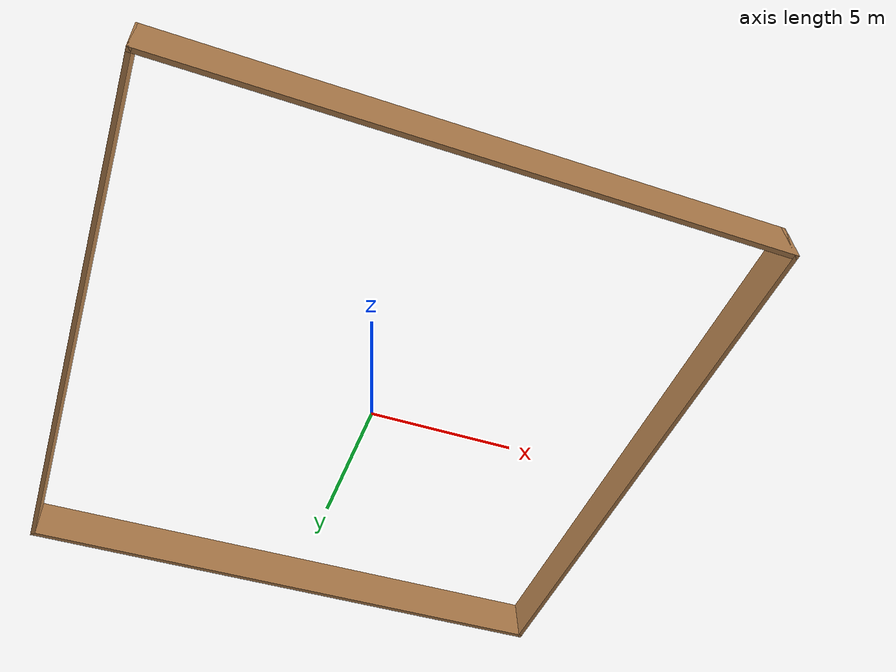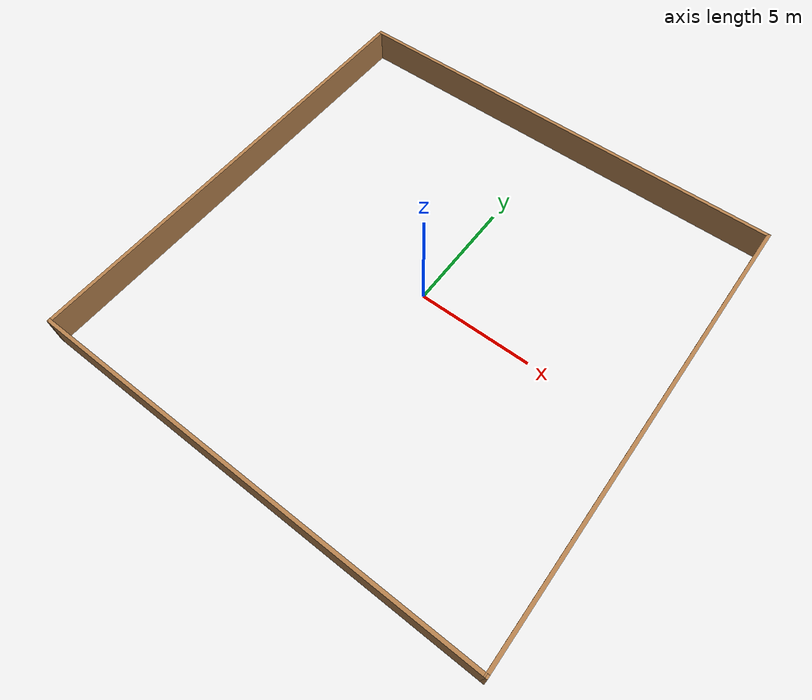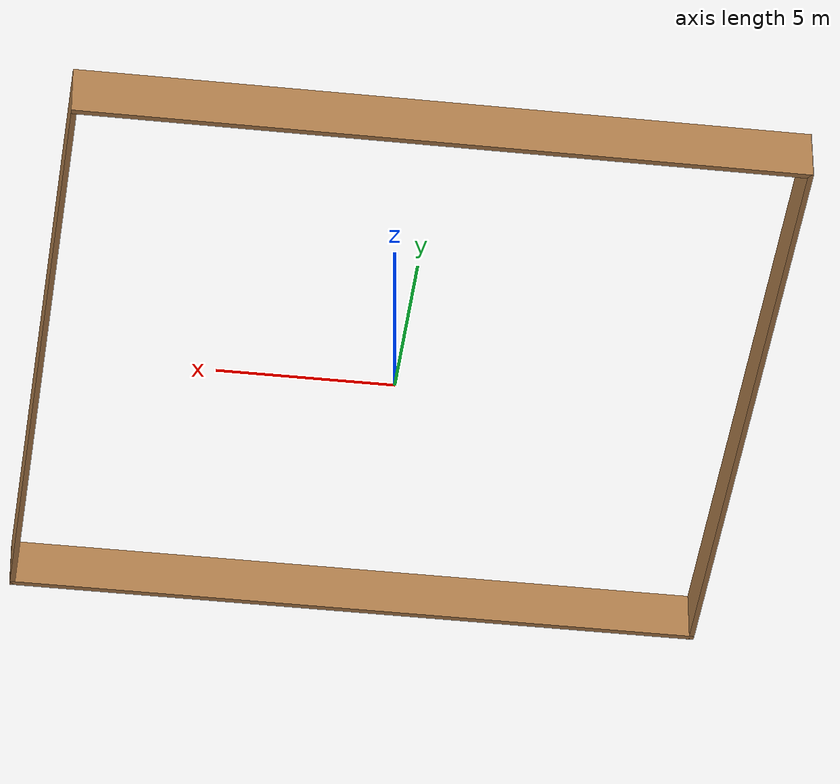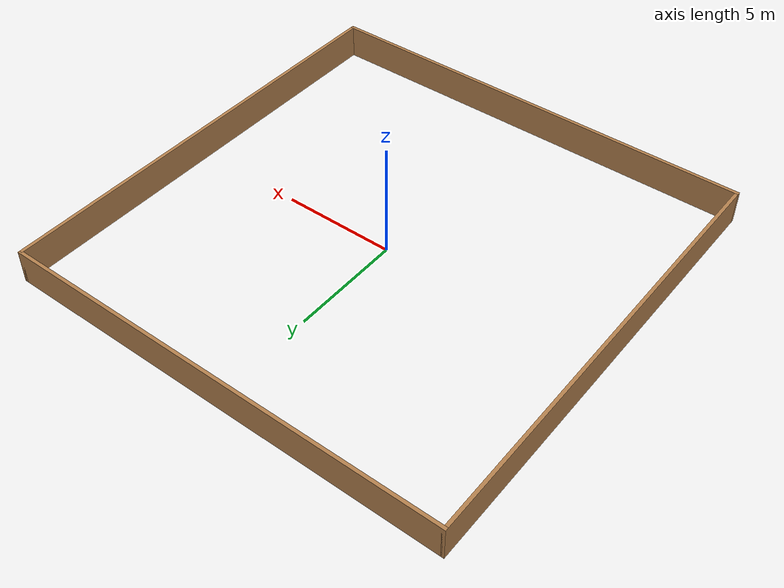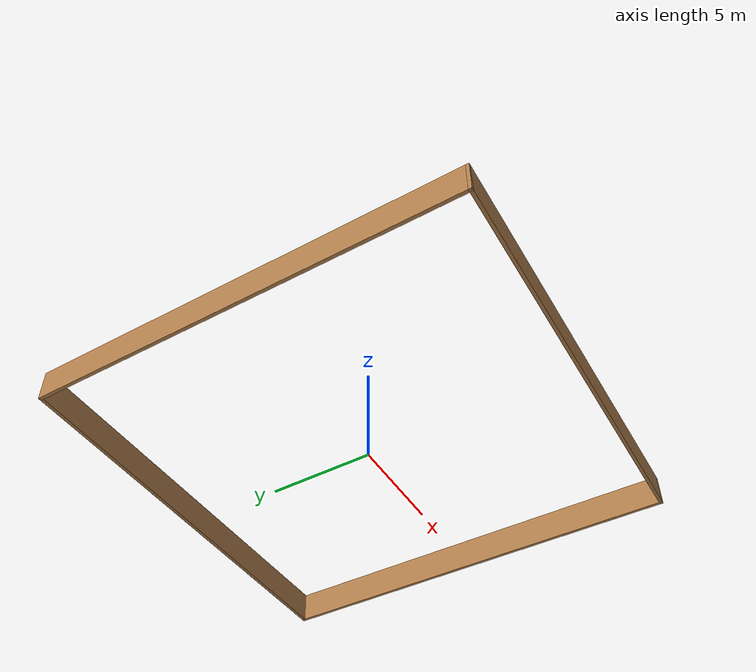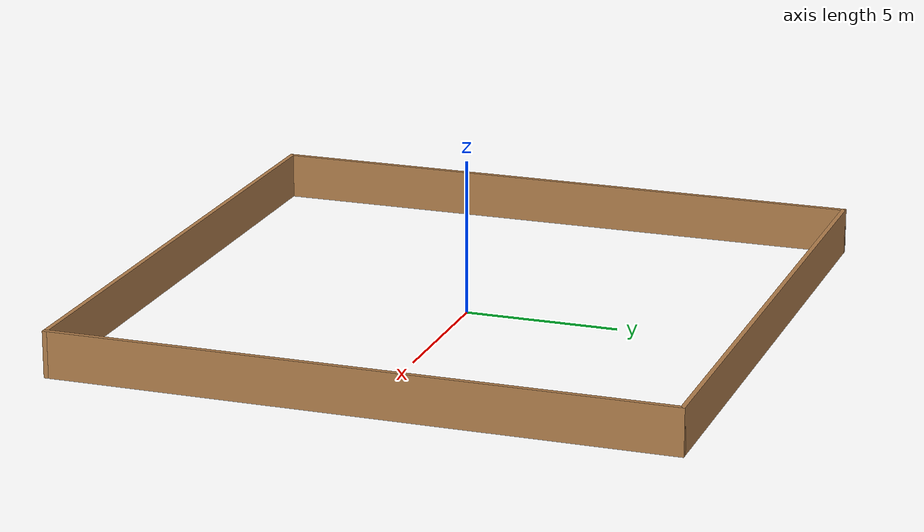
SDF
<?xml version='1.0'?>
<sdf version='1.7'>
  <model name='Bound_Wall'>
    <pose>-0.075 -0.0595 0 0 -0 0</pose>
    <link name='Wall_0'>
      <collision name='Wall_0_Collision'>
        <geometry>
          <box>
            <size>20 0.15 1.5</size>
          </box>
        </geometry>
        <pose>0 0 0.75 0 -0 0</pose>
      </collision>
      <visual name='Wall_0_Visual'>
        <pose>0 0 0.75 0 -0 0</pose>
        <geometry>
          <box>
            <size>20 0.15 1.5</size>
          </box>
        </geometry>
        <material>
          <script>
            <uri>file://media/materials/scripts/gazebo.material</uri>
            <name>Gazebo/Wood</name>
          </script>
          <ambient>1 1 1 1</ambient>
        </material>
        <meta>
          <layer>0</layer>
        </meta>
      </visual>
      <pose>-0 -9.9405 0 0 -0 0</pose>
    </link>
    <link name='Wall_2'>
      <collision name='Wall_2_Collision'>
        <geometry>
          <box>
            <size>20.031 0.15 1.5</size>
          </box>
        </geometry>
        <pose>0 0 0.75 0 -0 0</pose>
      </collision>
      <visual name='Wall_2_Visual'>
        <pose>0 0 0.75 0 -0 0</pose>
        <geometry>
          <box>
            <size>20.031 0.15 1.5</size>
          </box>
        </geometry>
        <material>
          <script>
            <uri>file://media/materials/scripts/gazebo.material</uri>
            <name>Gazebo/Wood</name>
          </script>
          <ambient>1 1 1 1</ambient>
        </material>
        <meta>
          <layer>0</layer>
        </meta>
      </visual>
      <pose>-9.925 -0 0 0 -0 1.5708</pose>
    </link>
    <link name='Wall_4'>
      <collision name='Wall_4_Collision'>
        <geometry>
          <box>
            <size>20 0.15 1.5</size>
          </box>
        </geometry>
        <pose>0 0 0.75 0 -0 0</pose>
      </collision>
      <visual name='Wall_4_Visual'>
        <pose>0 0 0.75 0 -0 0</pose>
        <geometry>
          <box>
            <size>20 0.15 1.5</size>
          </box>
        </geometry>
        <material>
          <script>
            <uri>file://media/materials/scripts/gazebo.material</uri>
            <name>Gazebo/Wood</name>
          </script>
          <ambient>1 1 1 1</ambient>
        </material>
        <meta>
          <layer>0</layer>
        </meta>
      </visual>
      <pose>-0 9.9405 0 0 -0 0</pose>
    </link>
    <link name='Wall_6'>
      <collision name='Wall_6_Collision'>
        <geometry>
          <box>
            <size>20.031 0.15 1.5</size>
          </box>
        </geometry>
        <pose>0 0 0.75 0 -0 0</pose>
      </collision>
      <visual name='Wall_6_Visual'>
        <pose>0 0 0.75 0 -0 0</pose>
        <geometry>
          <box>
            <size>20.031 0.15 1.5</size>
          </box>
        </geometry>
        <material>
          <script>
            <uri>file://media/materials/scripts/gazebo.material</uri>
            <name>Gazebo/Wood</name>
          </script>
          <ambient>1 1 1 1</ambient>
        </material>
        <meta>
          <layer>0</layer>
        </meta>
      </visual>
      <pose>9.925 -0 0 0 -0 -1.5708</pose>
    </link>
    <static>1</static>
  </model>
</sdf>
